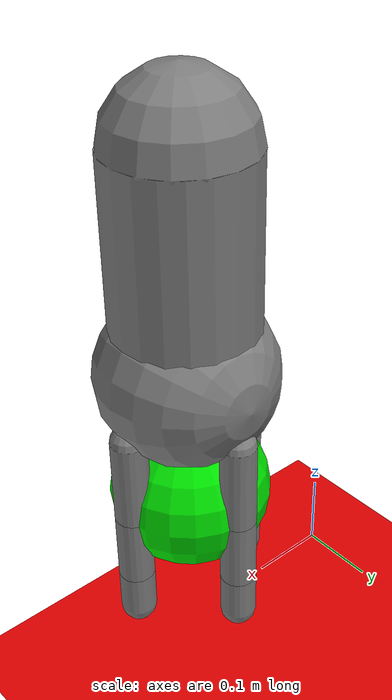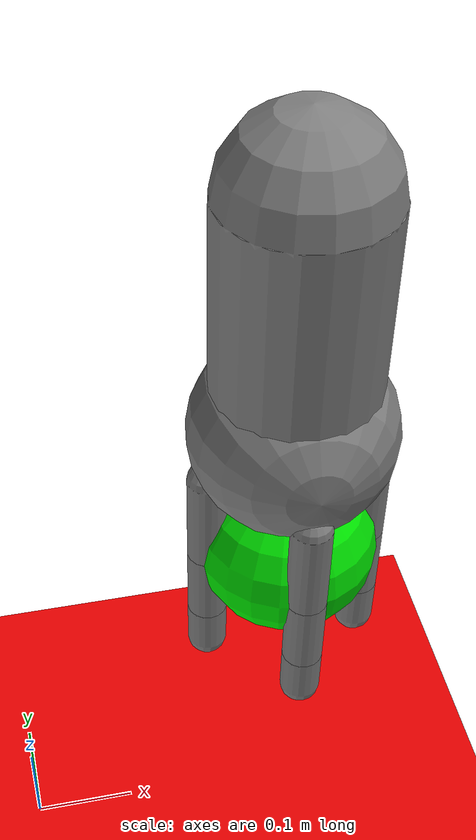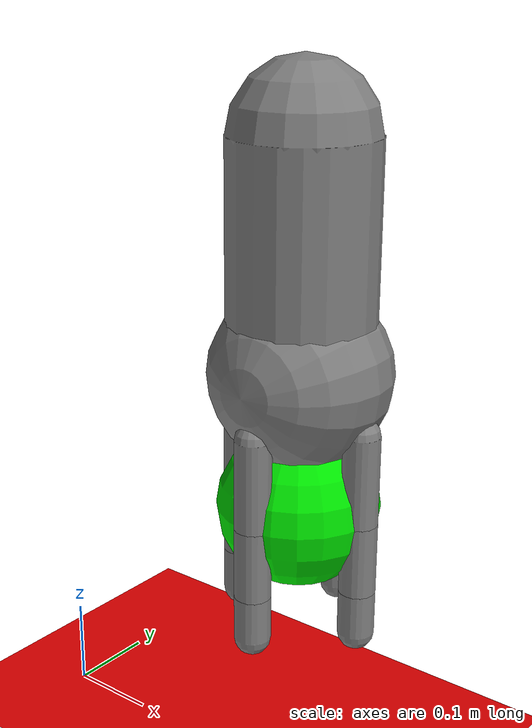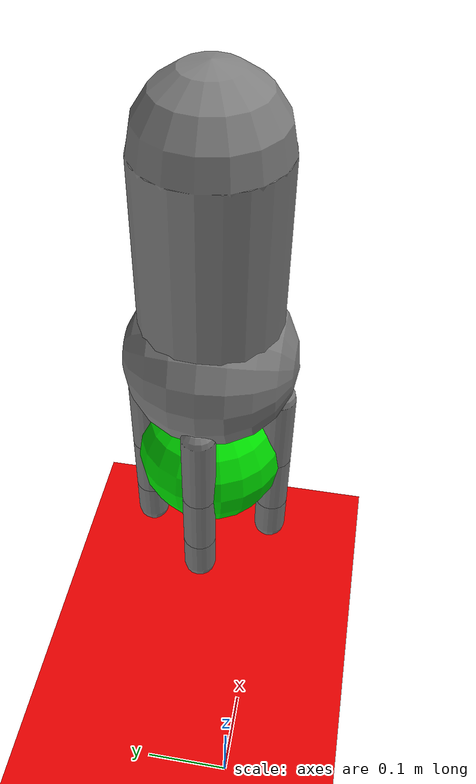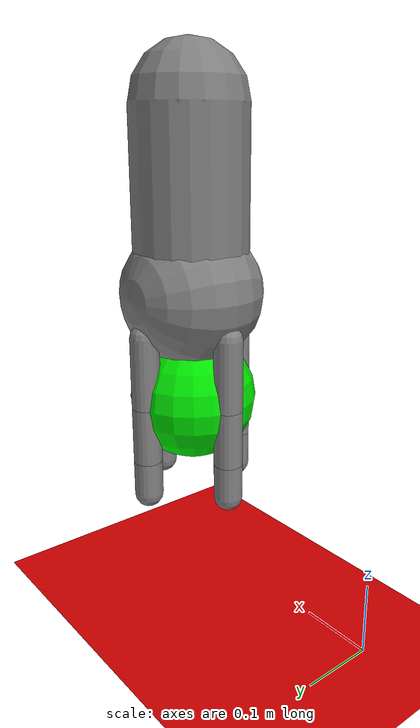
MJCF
<mujoco>
   <compiler inertiafromgeom='true' angle='degree' coordinate="local"/>
   <option timestep='0.005'>
   </option>

   <default>
      <joint damping='1.0' armature='1.0068' />
   </default>

   <size nstack="10000" nuserdata="3" nkey="1" />

    <worldbody>
      <light diffuse=".5 .5 .5" pos="0 0 3" dir="0 0 -1"/>

      <geom type="plane" size="2.0 2.0 2.0" rgba=".9 0 0 1"/>
			<!-- Forearm -->
            <body name='Forearm' pos='0.28 0.07 0.7' quat = '0.707 -0.707 0 0'>
               <joint damping = '10.0' name='forearm' type='slide' axis = '0 1 0'/>
               <geom name='forearm' type='capsule' fromto='0 0 0 .0 .25 -.0' size='0.080 0.16' />
			   <!-- Wrist -->
			   <body name='Wrist' pos = '0 0.25 0'>
				<joint name = 'wrist' type = 'hinge' pos='0 0 0' axis='1 0 0' range='-80 80' stiffness='0'/>
				<geom name = 'wrist' type = 'sphere' size = '0.10'/>
				<!-- Finger 1 -->
				<body name = 'Finger1' pos = '0 0.05 0.080'>
					<joint name = 'segment1' type = 'hinge' pos = '0 0 0' axis = '1 0 0' range = '-80 80' stiffness = '0'/>
					<geom name ='seg1' type = 'capsule' fromto='0 0 0 .0 .10 -.0' size='0.020 0.03'/>
					<body name = 'segment2' pos = '0 0.10 0'>
					<joint name = 'segment2' type = 'hinge' pos = '0 0 0' axis = '1 0 0' range = '-80 80' stiffness = '0'/>
					<geom name ='seg2' type = 'capsule' fromto='0 0 0 .0 .08 -.0' size='0.020 0.03'/>
					<body name = 'segment3' pos = '0 0.08 0'>

					<joint name = 'segment3' type = 'hinge' pos = '0 0 0' axis = '1 0 0' range = '-80 80' stiffness = '0'/>
					<geom name ='seg3' type = 'capsule' fromto='0 0 0 .0 .05 -.0' size='0.020 0.03'/>
					</body>
					</body>
				</body>
				<!-- Finger 2 -->
				<body name = 'Finger2' pos = '0.080 0.05 0'>
					<joint name = 'segment21' type = 'hinge' pos = '0 0 0' axis = '0 0 1' range = '-80 80' stiffness = '0'/>
					<geom name ='seg21' type = 'capsule' fromto='0 0 0 .0 .10 -.0' size='0.020 0.03'/>
					<body name = 'segment22' pos = '0 0.10 0'>
					<joint name = 'segment22' type = 'hinge' pos = '0 0 0' axis = '0 0 1' range = '-80 80' stiffness = '0'/>
					<geom name ='seg22' type = 'capsule' fromto='0 0 0 .0 .08 -.0' size='0.020 0.03'/>
					<body name = 'segment23' pos = '0 0.08 0'>
					<joint name = 'segment23' type = 'hinge' pos = '0 0 0' axis = '0 0 1' range = '-80 80' stiffness = '0'/>
					<geom name ='seg23' type = 'capsule' fromto='0 0 0 .0 .05 -.0' size='0.020 0.03'/>
					</body>
					</body>
				</body>
				<!-- Finger 3 -->
				<body name = 'Finger3' pos = '-0.080 0.05 0'>
					<joint name = 'segment31' type = 'hinge' pos = '0 0 0' axis = '0 0 1' range = '-80 80' stiffness = '0'/>
					<geom name ='seg31' type = 'capsule' fromto='0 0 0 .0 .10 -.0' size='0.020 0.03'/>
					<body name = 'segment32' pos = '0 0.10 0'>
					<joint name = 'segment32' type = 'hinge' pos = '0 0 0' axis = '0 0 1' range = '-80 80' stiffness = '0'/>
					<geom name ='seg32' type = 'capsule' fromto='0 0 0 .0 .08 -.0' size='0.020 0.03'/>
					<body name = 'segment33' pos = '0 0.08 0'>
					<joint name = 'segment33' type = 'hinge' pos = '0 0 0' axis = '0 0 1' range = '-80 80' stiffness = '0'/>
					<geom name ='seg33' type = 'capsule' fromto='0 0 0 .0 .05 -.0' size='0.020 0.03'/>
					</body>
					</body>
					</body>
					<body name = 'Finger4' pos = '0 0.05 -0.080'>
					<joint name = 'segment41' type = 'hinge' pos = '0 0 0' axis = '1 0 0' range = '-80 80' stiffness = '0'/>
					<geom name ='seg41' type = 'capsule' fromto='0 0 0 .0 .10 -.0' size='0.020 0.03'/>
					<body name = 'segment42' pos = '0 0.10 0'>
					<joint name = 'segment42' type = 'hinge' pos = '0 0 0' axis = '1 0 0' range = '-80 80' stiffness = '0'/>
					<geom name ='seg42' type = 'capsule' fromto='0 0 0 .0 .08 -.0' size='0.020 0.03'/>
					<body name = 'segment43' pos = '0 0.08 0'>
					<joint name = 'segment43' type = 'hinge' pos = '0 0 0' axis = '1 0 0' range = '-80 80' stiffness = '0'/>
					<geom name ='seg43' type = 'capsule' fromto='0 0 0 .0 .05 -.0' size='0.020 0.03'/>
					</body>
					</body>
					</body>
				</body>
			   </body>

      <body name="cube" pos="0.28 0.07 0.3">
         <joint type="free" armature='0.0' damping='0' />
         <geom type="sphere"  size="0.090" rgba="0 0.9 0.0 1" mass="0.50"/>
      </body>
   </worldbody>

   <actuator>
      <position name = 'forearm' kp ='8' joint = 'forearm'/>
      <position name='segment1' kp='10' joint='segment1' />
      <position name='segment2' kp='10' joint='segment2' />
      <position name='segment3' kp='10' joint='segment3' />
      <position name='segment21' kp='10' joint='segment21' />
      <position name='segment22' kp='10' joint='segment22' />
      <position name='segment23' kp='10' joint='segment23' />
      <position name='segment31' kp='10' joint='segment31' />
      <position name='segment32' kp='10' joint='segment32' />
      <position name='segment33' kp='10' joint='segment33' />
      <position name='segment41' kp='10' joint='segment41' />
      <position name='segment42' kp='10' joint='segment42' />
      <position name='segment43' kp='10' joint='segment43' />
   </actuator>
</mujoco>
